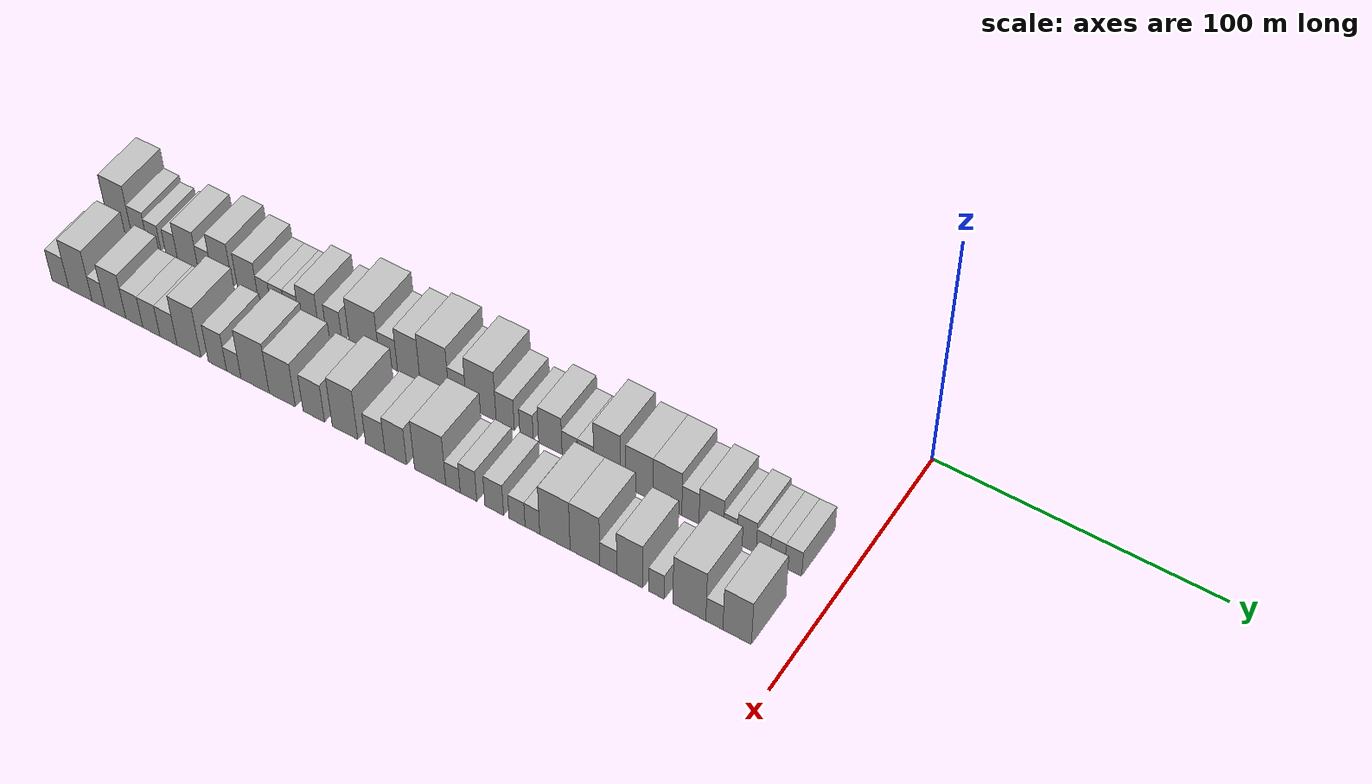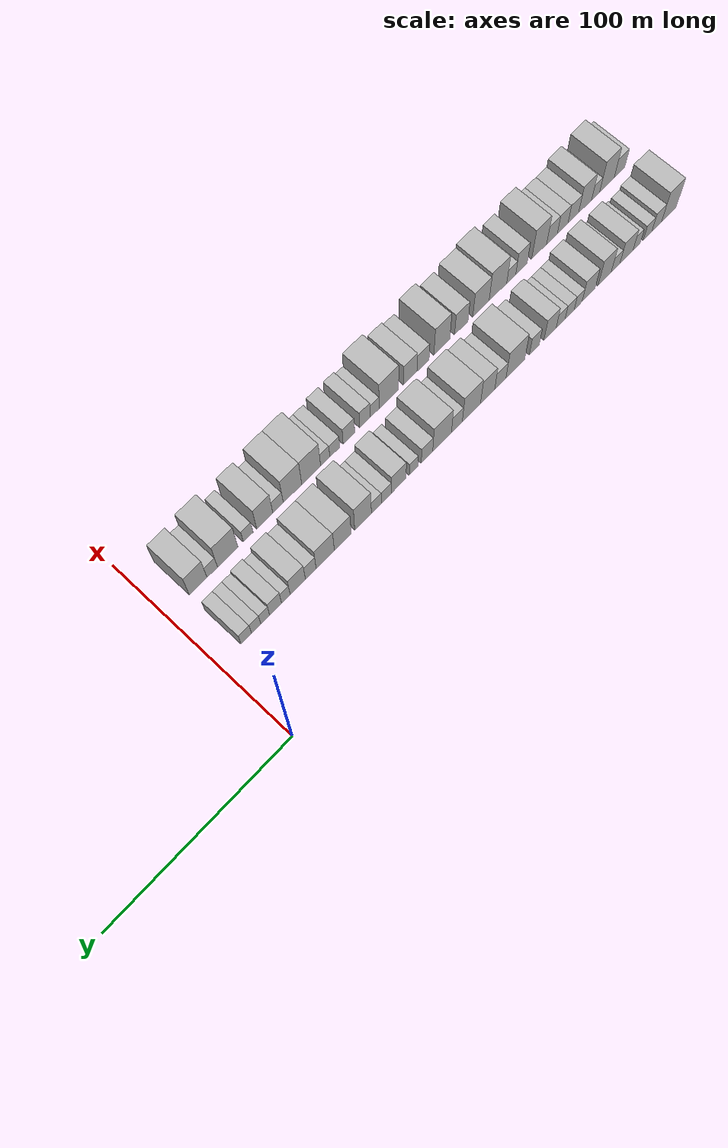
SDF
<sdf version="1.6">
 <world name="default">
  <model name="building_1">
   <static>1</static>
   <pose>50.0000 -273.0343 0 0.000000 0.000000 0.000000</pose>
   <link name="link">
    <pose>0 0 12.00 0 0 0</pose>
    <collision name="collision"><geometry><box><size>20.0000 9.9314 24.0000</size></box></geometry></collision>
    <visual name="visual">
     <cast_shadows>0</cast_shadows>
     <geometry><box><size>20.0000 9.9314 24.0000</size></box></geometry>
     <material>
      <script>
       <uri>model://HANNAS_wall/materials/scripts</uri>
       <uri>model://HANNAS_wall/materials/textures</uri>
       <name>vrc/HANNAS_wall</name>
      </script>
     </material>
    </visual>
   </link>
  </model>
  <model name="building_2">
   <static>1</static>
   <pose>50.0000 -264.8588 0 0.000000 0.000000 0.000000</pose>
   <link name="link">
    <pose>0 0 7.50 0 0 0</pose>
    <collision name="collision"><geometry><box><size>20.0000 6.4197 15.0000</size></box></geometry></collision>
    <visual name="visual">
     <cast_shadows>0</cast_shadows>
     <geometry><box><size>20.0000 6.4197 15.0000</size></box></geometry>
     <material>
      <script>
       <uri>model://HANNAS_wall/materials/scripts</uri>
       <uri>model://HANNAS_wall/materials/textures</uri>
       <name>vrc/HANNAS_wall</name>
      </script>
     </material>
    </visual>
   </link>
  </model>
  <model name="building_3">
   <static>1</static>
   <pose>50.0000 -258.8004 0 0.000000 0.000000 0.000000</pose>
   <link name="link">
    <pose>0 0 6.00 0 0 0</pose>
    <collision name="collision"><geometry><box><size>20.0000 5.6971 12.0000</size></box></geometry></collision>
    <visual name="visual">
     <cast_shadows>0</cast_shadows>
     <geometry><box><size>20.0000 5.6971 12.0000</size></box></geometry>
     <material>
      <script>
       <uri>model://HANNAS_wall/materials/scripts</uri>
       <uri>model://HANNAS_wall/materials/textures</uri>
       <name>vrc/HANNAS_wall</name>
      </script>
     </material>
    </visual>
   </link>
  </model>
  <model name="building_4">
   <static>1</static>
   <pose>50.0000 -251.4891 0 0.000000 0.000000 0.000000</pose>
   <link name="link">
    <pose>0 0 6.00 0 0 0</pose>
    <collision name="collision"><geometry><box><size>20.0000 4.9255 12.0000</size></box></geometry></collision>
    <visual name="visual">
     <cast_shadows>0</cast_shadows>
     <geometry><box><size>20.0000 4.9255 12.0000</size></box></geometry>
     <material>
      <script>
       <uri>model://HANNAS_wall/materials/scripts</uri>
       <uri>model://HANNAS_wall/materials/textures</uri>
       <name>vrc/HANNAS_wall</name>
      </script>
     </material>
    </visual>
   </link>
  </model>
  <model name="building_5">
   <static>1</static>
   <pose>50.0000 -244.7083 0 0.000000 0.000000 0.000000</pose>
   <link name="link">
    <pose>0 0 9.00 0 0 0</pose>
    <collision name="collision"><geometry><box><size>20.0000 8.6361 18.0000</size></box></geometry></collision>
    <visual name="visual">
     <cast_shadows>0</cast_shadows>
     <geometry><box><size>20.0000 8.6361 18.0000</size></box></geometry>
     <material>
      <script>
       <uri>model://HANNAS_wall/materials/scripts</uri>
       <uri>model://HANNAS_wall/materials/textures</uri>
       <name>vrc/HANNAS_wall</name>
      </script>
     </material>
    </visual>
   </link>
  </model>
  <model name="building_6">
   <static>1</static>
   <pose>50.0000 -237.5211 0 0.000000 0.000000 0.000000</pose>
   <link name="link">
    <pose>0 0 6.00 0 0 0</pose>
    <collision name="collision"><geometry><box><size>20.0000 5.7383 12.0000</size></box></geometry></collision>
    <visual name="visual">
     <cast_shadows>0</cast_shadows>
     <geometry><box><size>20.0000 5.7383 12.0000</size></box></geometry>
     <material>
      <script>
       <uri>model://HANNAS_wall/materials/scripts</uri>
       <uri>model://HANNAS_wall/materials/textures</uri>
       <name>vrc/HANNAS_wall</name>
      </script>
     </material>
    </visual>
   </link>
  </model>
  <model name="building_7">
   <static>1</static>
   <pose>50.0000 -230.3885 0 0.000000 0.000000 0.000000</pose>
   <link name="link">
    <pose>0 0 10.50 0 0 0</pose>
    <collision name="collision"><geometry><box><size>20.0000 8.5270 21.0000</size></box></geometry></collision>
    <visual name="visual">
     <cast_shadows>0</cast_shadows>
     <geometry><box><size>20.0000 8.5270 21.0000</size></box></geometry>
     <material>
      <script>
       <uri>model://HANNAS_wall/materials/scripts</uri>
       <uri>model://HANNAS_wall/materials/textures</uri>
       <name>vrc/HANNAS_wall</name>
      </script>
     </material>
    </visual>
   </link>
  </model>
  <model name="building_8">
   <static>1</static>
   <pose>50.0000 -219.9198 0 0.000000 0.000000 0.000000</pose>
   <link name="link">
    <pose>0 0 9.00 0 0 0</pose>
    <collision name="collision"><geometry><box><size>20.0000 8.4104 18.0000</size></box></geometry></collision>
    <visual name="visual">
     <cast_shadows>0</cast_shadows>
     <geometry><box><size>20.0000 8.4104 18.0000</size></box></geometry>
     <material>
      <script>
       <uri>model://HANNAS_wall/materials/scripts</uri>
       <uri>model://HANNAS_wall/materials/textures</uri>
       <name>vrc/HANNAS_wall</name>
      </script>
     </material>
    </visual>
   </link>
  </model>
  <model name="building_9">
   <static>1</static>
   <pose>50.0000 -213.1879 0 0.000000 0.000000 0.000000</pose>
   <link name="link">
    <pose>0 0 6.00 0 0 0</pose>
    <collision name="collision"><geometry><box><size>20.0000 5.0536 12.0000</size></box></geometry></collision>
    <visual name="visual">
     <cast_shadows>0</cast_shadows>
     <geometry><box><size>20.0000 5.0536 12.0000</size></box></geometry>
     <material>
      <script>
       <uri>model://HANNAS_wall/materials/scripts</uri>
       <uri>model://HANNAS_wall/materials/textures</uri>
       <name>vrc/HANNAS_wall</name>
      </script>
     </material>
    </visual>
   </link>
  </model>
  <model name="building_10">
   <static>1</static>
   <pose>50.0000 -207.7523 0 0.000000 0.000000 0.000000</pose>
   <link name="link">
    <pose>0 0 6.00 0 0 0</pose>
    <collision name="collision"><geometry><box><size>20.0000 5.8176 12.0000</size></box></geometry></collision>
    <visual name="visual">
     <cast_shadows>0</cast_shadows>
     <geometry><box><size>20.0000 5.8176 12.0000</size></box></geometry>
     <material>
      <script>
       <uri>model://HANNAS_wall/materials/scripts</uri>
       <uri>model://HANNAS_wall/materials/textures</uri>
       <name>vrc/HANNAS_wall</name>
      </script>
     </material>
    </visual>
   </link>
  </model>
  <model name="building_11">
   <static>1</static>
   <pose>50.0000 -201.9945 0 0.000000 0.000000 0.000000</pose>
   <link name="link">
    <pose>0 0 6.00 0 0 0</pose>
    <collision name="collision"><geometry><box><size>20.0000 5.6979 12.0000</size></box></geometry></collision>
    <visual name="visual">
     <cast_shadows>0</cast_shadows>
     <geometry><box><size>20.0000 5.6979 12.0000</size></box></geometry>
     <material>
      <script>
       <uri>model://HANNAS_wall/materials/scripts</uri>
       <uri>model://HANNAS_wall/materials/textures</uri>
       <name>vrc/HANNAS_wall</name>
      </script>
     </material>
    </visual>
   </link>
  </model>
  <model name="building_12">
   <static>1</static>
   <pose>50.0000 -195.2230 0 0.000000 0.000000 0.000000</pose>
   <link name="link">
    <pose>0 0 9.00 0 0 0</pose>
    <collision name="collision"><geometry><box><size>20.0000 7.8452 18.0000</size></box></geometry></collision>
    <visual name="visual">
     <cast_shadows>0</cast_shadows>
     <geometry><box><size>20.0000 7.8452 18.0000</size></box></geometry>
     <material>
      <script>
       <uri>model://HANNAS_wall/materials/scripts</uri>
       <uri>model://HANNAS_wall/materials/textures</uri>
       <name>vrc/HANNAS_wall</name>
      </script>
     </material>
    </visual>
   </link>
  </model>
  <model name="building_13">
   <static>1</static>
   <pose>50.0000 -185.1870 0 0.000000 0.000000 0.000000</pose>
   <link name="link">
    <pose>0 0 7.50 0 0 0</pose>
    <collision name="collision"><geometry><box><size>20.0000 6.2269 15.0000</size></box></geometry></collision>
    <visual name="visual">
     <cast_shadows>0</cast_shadows>
     <geometry><box><size>20.0000 6.2269 15.0000</size></box></geometry>
     <material>
      <script>
       <uri>model://HANNAS_wall/materials/scripts</uri>
       <uri>model://HANNAS_wall/materials/textures</uri>
       <name>vrc/HANNAS_wall</name>
      </script>
     </material>
    </visual>
   </link>
  </model>
  <model name="building_14">
   <static>1</static>
   <pose>50.0000 -173.2134 0 0.000000 0.000000 0.000000</pose>
   <link name="link">
    <pose>0 0 12.00 0 0 0</pose>
    <collision name="collision"><geometry><box><size>20.0000 11.7202 24.0000</size></box></geometry></collision>
    <visual name="visual">
     <cast_shadows>0</cast_shadows>
     <geometry><box><size>20.0000 11.7202 24.0000</size></box></geometry>
     <material>
      <script>
       <uri>model://HANNAS_wall/materials/scripts</uri>
       <uri>model://HANNAS_wall/materials/textures</uri>
       <name>vrc/HANNAS_wall</name>
      </script>
     </material>
    </visual>
   </link>
  </model>
  <model name="building_15">
   <static>1</static>
   <pose>50.0000 -163.8591 0 0.000000 0.000000 0.000000</pose>
   <link name="link">
    <pose>0 0 7.50 0 0 0</pose>
    <collision name="collision"><geometry><box><size>20.0000 6.9883 15.0000</size></box></geometry></collision>
    <visual name="visual">
     <cast_shadows>0</cast_shadows>
     <geometry><box><size>20.0000 6.9883 15.0000</size></box></geometry>
     <material>
      <script>
       <uri>model://HANNAS_wall/materials/scripts</uri>
       <uri>model://HANNAS_wall/materials/textures</uri>
       <name>vrc/HANNAS_wall</name>
      </script>
     </material>
    </visual>
   </link>
  </model>
  <model name="building_16">
   <static>1</static>
   <pose>50.0000 -155.9668 0 0.000000 0.000000 0.000000</pose>
   <link name="link">
    <pose>0 0 10.50 0 0 0</pose>
    <collision name="collision"><geometry><box><size>20.0000 8.7963 21.0000</size></box></geometry></collision>
    <visual name="visual">
     <cast_shadows>0</cast_shadows>
     <geometry><box><size>20.0000 8.7963 21.0000</size></box></geometry>
     <material>
      <script>
       <uri>model://HANNAS_wall/materials/scripts</uri>
       <uri>model://HANNAS_wall/materials/textures</uri>
       <name>vrc/HANNAS_wall</name>
      </script>
     </material>
    </visual>
   </link>
  </model>
  <model name="building_17">
   <static>1</static>
   <pose>50.0000 -145.9873 0 0.000000 0.000000 0.000000</pose>
   <link name="link">
    <pose>0 0 12.00 0 0 0</pose>
    <collision name="collision"><geometry><box><size>20.0000 11.1627 24.0000</size></box></geometry></collision>
    <visual name="visual">
     <cast_shadows>0</cast_shadows>
     <geometry><box><size>20.0000 11.1627 24.0000</size></box></geometry>
     <material>
      <script>
       <uri>model://HANNAS_wall/materials/scripts</uri>
       <uri>model://HANNAS_wall/materials/textures</uri>
       <name>vrc/HANNAS_wall</name>
      </script>
     </material>
    </visual>
   </link>
  </model>
  <model name="building_18">
   <static>1</static>
   <pose>50.0000 -137.1092 0 0.000000 0.000000 0.000000</pose>
   <link name="link">
    <pose>0 0 7.50 0 0 0</pose>
    <collision name="collision"><geometry><box><size>20.0000 6.5936 15.0000</size></box></geometry></collision>
    <visual name="visual">
     <cast_shadows>0</cast_shadows>
     <geometry><box><size>20.0000 6.5936 15.0000</size></box></geometry>
     <material>
      <script>
       <uri>model://HANNAS_wall/materials/scripts</uri>
       <uri>model://HANNAS_wall/materials/textures</uri>
       <name>vrc/HANNAS_wall</name>
      </script>
     </material>
    </visual>
   </link>
  </model>
  <model name="building_19">
   <static>1</static>
   <pose>50.0000 -128.1583 0 0.000000 0.000000 0.000000</pose>
   <link name="link">
    <pose>0 0 12.00 0 0 0</pose>
    <collision name="collision"><geometry><box><size>20.0000 11.3082 24.0000</size></box></geometry></collision>
    <visual name="visual">
     <cast_shadows>0</cast_shadows>
     <geometry><box><size>20.0000 11.3082 24.0000</size></box></geometry>
     <material>
      <script>
       <uri>model://HANNAS_wall/materials/scripts</uri>
       <uri>model://HANNAS_wall/materials/textures</uri>
       <name>vrc/HANNAS_wall</name>
      </script>
     </material>
    </visual>
   </link>
  </model>
  <model name="building_20">
   <static>1</static>
   <pose>50.0000 -119.0666 0 0.000000 0.000000 0.000000</pose>
   <link name="link">
    <pose>0 0 7.50 0 0 0</pose>
    <collision name="collision"><geometry><box><size>20.0000 6.8751 15.0000</size></box></geometry></collision>
    <visual name="visual">
     <cast_shadows>0</cast_shadows>
     <geometry><box><size>20.0000 6.8751 15.0000</size></box></geometry>
     <material>
      <script>
       <uri>model://HANNAS_wall/materials/scripts</uri>
       <uri>model://HANNAS_wall/materials/textures</uri>
       <name>vrc/HANNAS_wall</name>
      </script>
     </material>
    </visual>
   </link>
  </model>
  <model name="building_21">
   <static>1</static>
   <pose>50.0000 -111.0815 0 0.000000 0.000000 0.000000</pose>
   <link name="link">
    <pose>0 0 6.00 0 0 0</pose>
    <collision name="collision"><geometry><box><size>20.0000 5.0952 12.0000</size></box></geometry></collision>
    <visual name="visual">
     <cast_shadows>0</cast_shadows>
     <geometry><box><size>20.0000 5.0952 12.0000</size></box></geometry>
     <material>
      <script>
       <uri>model://HANNAS_wall/materials/scripts</uri>
       <uri>model://HANNAS_wall/materials/textures</uri>
       <name>vrc/HANNAS_wall</name>
      </script>
     </material>
    </visual>
   </link>
  </model>
  <model name="building_22">
   <static>1</static>
   <pose>50.0000 -102.1809 0 0.000000 0.000000 0.000000</pose>
   <link name="link">
    <pose>0 0 9.00 0 0 0</pose>
    <collision name="collision"><geometry><box><size>20.0000 8.7060 18.0000</size></box></geometry></collision>
    <visual name="visual">
     <cast_shadows>0</cast_shadows>
     <geometry><box><size>20.0000 8.7060 18.0000</size></box></geometry>
     <material>
      <script>
       <uri>model://HANNAS_wall/materials/scripts</uri>
       <uri>model://HANNAS_wall/materials/textures</uri>
       <name>vrc/HANNAS_wall</name>
      </script>
     </material>
    </visual>
   </link>
  </model>
  <model name="building_23">
   <static>1</static>
   <pose>50.0000 -94.8790 0 0.000000 0.000000 0.000000</pose>
   <link name="link">
    <pose>0 0 6.00 0 0 0</pose>
    <collision name="collision"><geometry><box><size>20.0000 5.8978 12.0000</size></box></geometry></collision>
    <visual name="visual">
     <cast_shadows>0</cast_shadows>
     <geometry><box><size>20.0000 5.8978 12.0000</size></box></geometry>
     <material>
      <script>
       <uri>model://HANNAS_wall/materials/scripts</uri>
       <uri>model://HANNAS_wall/materials/textures</uri>
       <name>vrc/HANNAS_wall</name>
      </script>
     </material>
    </visual>
   </link>
  </model>
  <model name="building_24">
   <static>1</static>
   <pose>50.0000 -89.0236 0 0.000000 0.000000 0.000000</pose>
   <link name="link">
    <pose>0 0 6.00 0 0 0</pose>
    <collision name="collision"><geometry><box><size>20.0000 5.8129 12.0000</size></box></geometry></collision>
    <visual name="visual">
     <cast_shadows>0</cast_shadows>
     <geometry><box><size>20.0000 5.8129 12.0000</size></box></geometry>
     <material>
      <script>
       <uri>model://HANNAS_wall/materials/scripts</uri>
       <uri>model://HANNAS_wall/materials/textures</uri>
       <name>vrc/HANNAS_wall</name>
      </script>
     </material>
    </visual>
   </link>
  </model>
  <model name="building_25">
   <static>1</static>
   <pose>50.0000 -81.2553 0 0.000000 0.000000 0.000000</pose>
   <link name="link">
    <pose>0 0 12.00 0 0 0</pose>
    <collision name="collision"><geometry><box><size>20.0000 9.7238 24.0000</size></box></geometry></collision>
    <visual name="visual">
     <cast_shadows>0</cast_shadows>
     <geometry><box><size>20.0000 9.7238 24.0000</size></box></geometry>
     <material>
      <script>
       <uri>model://HANNAS_wall/materials/scripts</uri>
       <uri>model://HANNAS_wall/materials/textures</uri>
       <name>vrc/HANNAS_wall</name>
      </script>
     </material>
    </visual>
   </link>
  </model>
  <model name="building_26">
   <static>1</static>
   <pose>50.0000 -69.5122 0 0.000000 0.000000 0.000000</pose>
   <link name="link">
    <pose>0 0 10.50 0 0 0</pose>
    <collision name="collision"><geometry><box><size>20.0000 9.7625 21.0000</size></box></geometry></collision>
    <visual name="visual">
     <cast_shadows>0</cast_shadows>
     <geometry><box><size>20.0000 9.7625 21.0000</size></box></geometry>
     <material>
      <script>
       <uri>model://HANNAS_wall/materials/scripts</uri>
       <uri>model://HANNAS_wall/materials/textures</uri>
       <name>vrc/HANNAS_wall</name>
      </script>
     </material>
    </visual>
   </link>
  </model>
  <model name="building_27">
   <static>1</static>
   <pose>50.0000 -59.4392 0 0.000000 0.000000 0.000000</pose>
   <link name="link">
    <pose>0 0 10.50 0 0 0</pose>
    <collision name="collision"><geometry><box><size>20.0000 10.3836 21.0000</size></box></geometry></collision>
    <visual name="visual">
     <cast_shadows>0</cast_shadows>
     <geometry><box><size>20.0000 10.3836 21.0000</size></box></geometry>
     <material>
      <script>
       <uri>model://HANNAS_wall/materials/scripts</uri>
       <uri>model://HANNAS_wall/materials/textures</uri>
       <name>vrc/HANNAS_wall</name>
      </script>
     </material>
    </visual>
   </link>
  </model>
  <model name="building_28">
   <static>1</static>
   <pose>50.0000 -51.1860 0 0.000000 0.000000 0.000000</pose>
   <link name="link">
    <pose>0 0 7.50 0 0 0</pose>
    <collision name="collision"><geometry><box><size>20.0000 6.1228 15.0000</size></box></geometry></collision>
    <visual name="visual">
     <cast_shadows>0</cast_shadows>
     <geometry><box><size>20.0000 6.1228 15.0000</size></box></geometry>
     <material>
      <script>
       <uri>model://HANNAS_wall/materials/scripts</uri>
       <uri>model://HANNAS_wall/materials/textures</uri>
       <name>vrc/HANNAS_wall</name>
      </script>
     </material>
    </visual>
   </link>
  </model>
  <model name="building_29">
   <static>1</static>
   <pose>50.0000 -43.8000 0 0.000000 0.000000 0.000000</pose>
   <link name="link">
    <pose>0 0 9.00 0 0 0</pose>
    <collision name="collision"><geometry><box><size>20.0000 8.6491 18.0000</size></box></geometry></collision>
    <visual name="visual">
     <cast_shadows>0</cast_shadows>
     <geometry><box><size>20.0000 8.6491 18.0000</size></box></geometry>
     <material>
      <script>
       <uri>model://HANNAS_wall/materials/scripts</uri>
       <uri>model://HANNAS_wall/materials/textures</uri>
       <name>vrc/HANNAS_wall</name>
      </script>
     </material>
    </visual>
   </link>
  </model>
  <model name="building_30">
   <static>1</static>
   <pose>50.0000 -37.0525 0 0.000000 0.000000 0.000000</pose>
   <link name="link">
    <pose>0 0 6.00 0 0 0</pose>
    <collision name="collision"><geometry><box><size>20.0000 4.8459 12.0000</size></box></geometry></collision>
    <visual name="visual">
     <cast_shadows>0</cast_shadows>
     <geometry><box><size>20.0000 4.8459 12.0000</size></box></geometry>
     <material>
      <script>
       <uri>model://HANNAS_wall/materials/scripts</uri>
       <uri>model://HANNAS_wall/materials/textures</uri>
       <name>vrc/HANNAS_wall</name>
      </script>
     </material>
    </visual>
   </link>
  </model>
  <model name="building_31">
   <static>1</static>
   <pose>50.0000 -31.2973 0 0.000000 0.000000 0.000000</pose>
   <link name="link">
    <pose>0 0 7.50 0 0 0</pose>
    <collision name="collision"><geometry><box><size>20.0000 6.6644 15.0000</size></box></geometry></collision>
    <visual name="visual">
     <cast_shadows>0</cast_shadows>
     <geometry><box><size>20.0000 6.6644 15.0000</size></box></geometry>
     <material>
      <script>
       <uri>model://HANNAS_wall/materials/scripts</uri>
       <uri>model://HANNAS_wall/materials/textures</uri>
       <name>vrc/HANNAS_wall</name>
      </script>
     </material>
    </visual>
   </link>
  </model>
  <model name="building_32">
   <static>1</static>
   <pose>50.0000 -25.5076 0 0.000000 0.000000 0.000000</pose>
   <link name="link">
    <pose>0 0 6.00 0 0 0</pose>
    <collision name="collision"><geometry><box><size>20.0000 4.9150 12.0000</size></box></geometry></collision>
    <visual name="visual">
     <cast_shadows>0</cast_shadows>
     <geometry><box><size>20.0000 4.9150 12.0000</size></box></geometry>
     <material>
      <script>
       <uri>model://HANNAS_wall/materials/scripts</uri>
       <uri>model://HANNAS_wall/materials/textures</uri>
       <name>vrc/HANNAS_wall</name>
      </script>
     </material>
    </visual>
   </link>
  </model>
  <model name="building_33">
   <static>1</static>
   <pose>50.0000 -20.5006 0 0.000000 0.000000 0.000000</pose>
   <link name="link">
    <pose>0 0 6.00 0 0 0</pose>
    <collision name="collision"><geometry><box><size>20.0000 5.0990 12.0000</size></box></geometry></collision>
    <visual name="visual">
     <cast_shadows>0</cast_shadows>
     <geometry><box><size>20.0000 5.0990 12.0000</size></box></geometry>
     <material>
      <script>
       <uri>model://HANNAS_wall/materials/scripts</uri>
       <uri>model://HANNAS_wall/materials/textures</uri>
       <name>vrc/HANNAS_wall</name>
      </script>
     </material>
    </visual>
   </link>
  </model>
  <model name="building_34">
   <static>1</static>
   <pose>50.0000 -15.0128 0 0.000000 0.000000 0.000000</pose>
   <link name="link">
    <pose>0 0 6.00 0 0 0</pose>
    <collision name="collision"><geometry><box><size>20.0000 5.8766 12.0000</size></box></geometry></collision>
    <visual name="visual">
     <cast_shadows>0</cast_shadows>
     <geometry><box><size>20.0000 5.8766 12.0000</size></box></geometry>
     <material>
      <script>
       <uri>model://HANNAS_wall/materials/scripts</uri>
       <uri>model://HANNAS_wall/materials/textures</uri>
       <name>vrc/HANNAS_wall</name>
      </script>
     </material>
    </visual>
   </link>
  </model>
  <model name="building_67">
   <static>1</static>
   <pose>79.0000 -274.4416 0 0.000000 0.000000 0.000000</pose>
   <link name="link">
    <pose>0 0 7.50 0 0 0</pose>
    <collision name="collision"><geometry><box><size>20.0000 7.1169 15.0000</size></box></geometry></collision>
    <visual name="visual">
     <cast_shadows>0</cast_shadows>
     <geometry><box><size>20.0000 7.1169 15.0000</size></box></geometry>
     <material>
      <script>
       <uri>model://HANNAS_wall/materials/scripts</uri>
       <uri>model://HANNAS_wall/materials/textures</uri>
       <name>vrc/HANNAS_wall</name>
      </script>
     </material>
    </visual>
   </link>
  </model>
  <model name="building_68">
   <static>1</static>
   <pose>79.0000 -266.0316 0 0.000000 0.000000 0.000000</pose>
   <link name="link">
    <pose>0 0 12.00 0 0 0</pose>
    <collision name="collision"><geometry><box><size>20.0000 9.7030 24.0000</size></box></geometry></collision>
    <visual name="visual">
     <cast_shadows>0</cast_shadows>
     <geometry><box><size>20.0000 9.7030 24.0000</size></box></geometry>
     <material>
      <script>
       <uri>model://HANNAS_wall/materials/scripts</uri>
       <uri>model://HANNAS_wall/materials/textures</uri>
       <name>vrc/HANNAS_wall</name>
      </script>
     </material>
    </visual>
   </link>
  </model>
  <model name="building_69">
   <static>1</static>
   <pose>79.0000 -258.5016 0 0.000000 0.000000 0.000000</pose>
   <link name="link">
    <pose>0 0 6.00 0 0 0</pose>
    <collision name="collision"><geometry><box><size>20.0000 5.3572 12.0000</size></box></geometry></collision>
    <visual name="visual">
     <cast_shadows>0</cast_shadows>
     <geometry><box><size>20.0000 5.3572 12.0000</size></box></geometry>
     <material>
      <script>
       <uri>model://HANNAS_wall/materials/scripts</uri>
       <uri>model://HANNAS_wall/materials/textures</uri>
       <name>vrc/HANNAS_wall</name>
      </script>
     </material>
    </visual>
   </link>
  </model>
  <model name="building_70">
   <static>1</static>
   <pose>79.0000 -251.5021 0 0.000000 0.000000 0.000000</pose>
   <link name="link">
    <pose>0 0 10.50 0 0 0</pose>
    <collision name="collision"><geometry><box><size>20.0000 8.6417 21.0000</size></box></geometry></collision>
    <visual name="visual">
     <cast_shadows>0</cast_shadows>
     <geometry><box><size>20.0000 8.6417 21.0000</size></box></geometry>
     <material>
      <script>
       <uri>model://HANNAS_wall/materials/scripts</uri>
       <uri>model://HANNAS_wall/materials/textures</uri>
       <name>vrc/HANNAS_wall</name>
      </script>
     </material>
    </visual>
   </link>
  </model>
  <model name="building_71">
   <static>1</static>
   <pose>79.0000 -243.6849 0 0.000000 0.000000 0.000000</pose>
   <link name="link">
    <pose>0 0 7.50 0 0 0</pose>
    <collision name="collision"><geometry><box><size>20.0000 6.9927 15.0000</size></box></geometry></collision>
    <visual name="visual">
     <cast_shadows>0</cast_shadows>
     <geometry><box><size>20.0000 6.9927 15.0000</size></box></geometry>
     <material>
      <script>
       <uri>model://HANNAS_wall/materials/scripts</uri>
       <uri>model://HANNAS_wall/materials/textures</uri>
       <name>vrc/HANNAS_wall</name>
      </script>
     </material>
    </visual>
   </link>
  </model>
  <model name="building_72">
   <static>1</static>
   <pose>79.0000 -236.7010 0 0.000000 0.000000 0.000000</pose>
   <link name="link">
    <pose>0 0 7.50 0 0 0</pose>
    <collision name="collision"><geometry><box><size>20.0000 6.9751 15.0000</size></box></geometry></collision>
    <visual name="visual">
     <cast_shadows>0</cast_shadows>
     <geometry><box><size>20.0000 6.9751 15.0000</size></box></geometry>
     <material>
      <script>
       <uri>model://HANNAS_wall/materials/scripts</uri>
       <uri>model://HANNAS_wall/materials/textures</uri>
       <name>vrc/HANNAS_wall</name>
      </script>
     </material>
    </visual>
   </link>
  </model>
  <model name="building_73">
   <static>1</static>
   <pose>79.0000 -229.7155 0 0.000000 0.000000 0.000000</pose>
   <link name="link">
    <pose>0 0 7.50 0 0 0</pose>
    <collision name="collision"><geometry><box><size>20.0000 6.9959 15.0000</size></box></geometry></collision>
    <visual name="visual">
     <cast_shadows>0</cast_shadows>
     <geometry><box><size>20.0000 6.9959 15.0000</size></box></geometry>
     <material>
      <script>
       <uri>model://HANNAS_wall/materials/scripts</uri>
       <uri>model://HANNAS_wall/materials/textures</uri>
       <name>vrc/HANNAS_wall</name>
      </script>
     </material>
    </visual>
   </link>
  </model>
  <model name="building_74">
   <static>1</static>
   <pose>79.0000 -221.3810 0 0.000000 0.000000 0.000000</pose>
   <link name="link">
    <pose>0 0 12.00 0 0 0</pose>
    <collision name="collision"><geometry><box><size>20.0000 9.6732 24.0000</size></box></geometry></collision>
    <visual name="visual">
     <cast_shadows>0</cast_shadows>
     <geometry><box><size>20.0000 9.6732 24.0000</size></box></geometry>
     <material>
      <script>
       <uri>model://HANNAS_wall/materials/scripts</uri>
       <uri>model://HANNAS_wall/materials/textures</uri>
       <name>vrc/HANNAS_wall</name>
      </script>
     </material>
    </visual>
   </link>
  </model>
  <model name="building_75">
   <static>1</static>
   <pose>79.0000 -209.8962 0 0.000000 0.000000 0.000000</pose>
   <link name="link">
    <pose>0 0 9.00 0 0 0</pose>
    <collision name="collision"><geometry><box><size>20.0000 7.2963 18.0000</size></box></geometry></collision>
    <visual name="visual">
     <cast_shadows>0</cast_shadows>
     <geometry><box><size>20.0000 7.2963 18.0000</size></box></geometry>
     <material>
      <script>
       <uri>model://HANNAS_wall/materials/scripts</uri>
       <uri>model://HANNAS_wall/materials/textures</uri>
       <name>vrc/HANNAS_wall</name>
      </script>
     </material>
    </visual>
   </link>
  </model>
  <model name="building_76">
   <static>1</static>
   <pose>79.0000 -203.3675 0 0.000000 0.000000 0.000000</pose>
   <link name="link">
    <pose>0 0 6.00 0 0 0</pose>
    <collision name="collision"><geometry><box><size>20.0000 5.7612 12.0000</size></box></geometry></collision>
    <visual name="visual">
     <cast_shadows>0</cast_shadows>
     <geometry><box><size>20.0000 5.7612 12.0000</size></box></geometry>
     <material>
      <script>
       <uri>model://HANNAS_wall/materials/scripts</uri>
       <uri>model://HANNAS_wall/materials/textures</uri>
       <name>vrc/HANNAS_wall</name>
      </script>
     </material>
    </visual>
   </link>
  </model>
  <model name="building_77">
   <static>1</static>
   <pose>79.0000 -194.9044 0 0.000000 0.000000 0.000000</pose>
   <link name="link">
    <pose>0 0 12.00 0 0 0</pose>
    <collision name="collision"><geometry><box><size>20.0000 11.1649 24.0000</size></box></geometry></collision>
    <visual name="visual">
     <cast_shadows>0</cast_shadows>
     <geometry><box><size>20.0000 11.1649 24.0000</size></box></geometry>
     <material>
      <script>
       <uri>model://HANNAS_wall/materials/scripts</uri>
       <uri>model://HANNAS_wall/materials/textures</uri>
       <name>vrc/HANNAS_wall</name>
      </script>
     </material>
    </visual>
   </link>
  </model>
  <model name="building_78">
   <static>1</static>
   <pose>79.0000 -184.1753 0 0.000000 0.000000 0.000000</pose>
   <link name="link">
    <pose>0 0 10.50 0 0 0</pose>
    <collision name="collision"><geometry><box><size>20.0000 10.2935 21.0000</size></box></geometry></collision>
    <visual name="visual">
     <cast_shadows>0</cast_shadows>
     <geometry><box><size>20.0000 10.2935 21.0000</size></box></geometry>
     <material>
      <script>
       <uri>model://HANNAS_wall/materials/scripts</uri>
       <uri>model://HANNAS_wall/materials/textures</uri>
       <name>vrc/HANNAS_wall</name>
      </script>
     </material>
    </visual>
   </link>
  </model>
  <model name="building_79">
   <static>1</static>
   <pose>79.0000 -171.8423 0 0.000000 0.000000 0.000000</pose>
   <link name="link">
    <pose>0 0 9.00 0 0 0</pose>
    <collision name="collision"><geometry><box><size>20.0000 8.3725 18.0000</size></box></geometry></collision>
    <visual name="visual">
     <cast_shadows>0</cast_shadows>
     <geometry><box><size>20.0000 8.3725 18.0000</size></box></geometry>
     <material>
      <script>
       <uri>model://HANNAS_wall/materials/scripts</uri>
       <uri>model://HANNAS_wall/materials/textures</uri>
       <name>vrc/HANNAS_wall</name>
      </script>
     </material>
    </visual>
   </link>
  </model>
  <model name="building_80">
   <static>1</static>
   <pose>79.0000 -159.7549 0 0.000000 0.000000 0.000000</pose>
   <link name="link">
    <pose>0 0 12.00 0 0 0</pose>
    <collision name="collision"><geometry><box><size>20.0000 9.8023 24.0000</size></box></geometry></collision>
    <visual name="visual">
     <cast_shadows>0</cast_shadows>
     <geometry><box><size>20.0000 9.8023 24.0000</size></box></geometry>
     <material>
      <script>
       <uri>model://HANNAS_wall/materials/scripts</uri>
       <uri>model://HANNAS_wall/materials/textures</uri>
       <name>vrc/HANNAS_wall</name>
      </script>
     </material>
    </visual>
   </link>
  </model>
  <model name="building_81">
   <static>1</static>
   <pose>79.0000 -148.1388 0 0.000000 0.000000 0.000000</pose>
   <link name="link">
    <pose>0 0 7.50 0 0 0</pose>
    <collision name="collision"><geometry><box><size>20.0000 7.4301 15.0000</size></box></geometry></collision>
    <visual name="visual">
     <cast_shadows>0</cast_shadows>
     <geometry><box><size>20.0000 7.4301 15.0000</size></box></geometry>
     <material>
      <script>
       <uri>model://HANNAS_wall/materials/scripts</uri>
       <uri>model://HANNAS_wall/materials/textures</uri>
       <name>vrc/HANNAS_wall</name>
      </script>
     </material>
    </visual>
   </link>
  </model>
  <model name="building_82">
   <static>1</static>
   <pose>79.0000 -140.3186 0 0.000000 0.000000 0.000000</pose>
   <link name="link">
    <pose>0 0 9.00 0 0 0</pose>
    <collision name="collision"><geometry><box><size>20.0000 8.2102 18.0000</size></box></geometry></collision>
    <visual name="visual">
     <cast_shadows>0</cast_shadows>
     <geometry><box><size>20.0000 8.2102 18.0000</size></box></geometry>
     <material>
      <script>
       <uri>model://HANNAS_wall/materials/scripts</uri>
       <uri>model://HANNAS_wall/materials/textures</uri>
       <name>vrc/HANNAS_wall</name>
      </script>
     </material>
    </visual>
   </link>
  </model>
  <model name="building_83">
   <static>1</static>
   <pose>79.0000 -127.3564 0 0.000000 0.000000 0.000000</pose>
   <link name="link">
    <pose>0 0 12.00 0 0 0</pose>
    <collision name="collision"><geometry><box><size>20.0000 11.7142 24.0000</size></box></geometry></collision>
    <visual name="visual">
     <cast_shadows>0</cast_shadows>
     <geometry><box><size>20.0000 11.7142 24.0000</size></box></geometry>
     <material>
      <script>
       <uri>model://HANNAS_wall/materials/scripts</uri>
       <uri>model://HANNAS_wall/materials/textures</uri>
       <name>vrc/HANNAS_wall</name>
      </script>
     </material>
    </visual>
   </link>
  </model>
  <model name="building_84">
   <static>1</static>
   <pose>79.0000 -118.8035 0 0.000000 0.000000 0.000000</pose>
   <link name="link">
    <pose>0 0 6.00 0 0 0</pose>
    <collision name="collision"><geometry><box><size>20.0000 5.3916 12.0000</size></box></geometry></collision>
    <visual name="visual">
     <cast_shadows>0</cast_shadows>
     <geometry><box><size>20.0000 5.3916 12.0000</size></box></geometry>
     <material>
      <script>
       <uri>model://HANNAS_wall/materials/scripts</uri>
       <uri>model://HANNAS_wall/materials/textures</uri>
       <name>vrc/HANNAS_wall</name>
      </script>
     </material>
    </visual>
   </link>
  </model>
  <model name="building_85">
   <static>1</static>
   <pose>79.0000 -113.0218 0 0.000000 0.000000 0.000000</pose>
   <link name="link">
    <pose>0 0 7.50 0 0 0</pose>
    <collision name="collision"><geometry><box><size>20.0000 6.1719 15.0000</size></box></geometry></collision>
    <visual name="visual">
     <cast_shadows>0</cast_shadows>
     <geometry><box><size>20.0000 6.1719 15.0000</size></box></geometry>
     <material>
      <script>
       <uri>model://HANNAS_wall/materials/scripts</uri>
       <uri>model://HANNAS_wall/materials/textures</uri>
       <name>vrc/HANNAS_wall</name>
      </script>
     </material>
    </visual>
   </link>
  </model>
  <model name="building_86">
   <static>1</static>
   <pose>79.0000 -103.4971 0 0.000000 0.000000 0.000000</pose>
   <link name="link">
    <pose>0 0 7.50 0 0 0</pose>
    <collision name="collision"><geometry><box><size>20.0000 6.8775 15.0000</size></box></geometry></collision>
    <visual name="visual">
     <cast_shadows>0</cast_shadows>
     <geometry><box><size>20.0000 6.8775 15.0000</size></box></geometry>
     <material>
      <script>
       <uri>model://HANNAS_wall/materials/scripts</uri>
       <uri>model://HANNAS_wall/materials/textures</uri>
       <name>vrc/HANNAS_wall</name>
      </script>
     </material>
    </visual>
   </link>
  </model>
  <model name="building_87">
   <static>1</static>
   <pose>79.0000 -95.1339 0 0.000000 0.000000 0.000000</pose>
   <link name="link">
    <pose>0 0 6.00 0 0 0</pose>
    <collision name="collision"><geometry><box><size>20.0000 5.8489 12.0000</size></box></geometry></collision>
    <visual name="visual">
     <cast_shadows>0</cast_shadows>
     <geometry><box><size>20.0000 5.8489 12.0000</size></box></geometry>
     <material>
      <script>
       <uri>model://HANNAS_wall/materials/scripts</uri>
       <uri>model://HANNAS_wall/materials/textures</uri>
       <name>vrc/HANNAS_wall</name>
      </script>
     </material>
    </visual>
   </link>
  </model>
  <model name="building_88">
   <static>1</static>
   <pose>79.0000 -89.5340 0 0.000000 0.000000 0.000000</pose>
   <link name="link">
    <pose>0 0 6.00 0 0 0</pose>
    <collision name="collision"><geometry><box><size>20.0000 5.3510 12.0000</size></box></geometry></collision>
    <visual name="visual">
     <cast_shadows>0</cast_shadows>
     <geometry><box><size>20.0000 5.3510 12.0000</size></box></geometry>
     <material>
      <script>
       <uri>model://HANNAS_wall/materials/scripts</uri>
       <uri>model://HANNAS_wall/materials/textures</uri>
       <name>vrc/HANNAS_wall</name>
      </script>
     </material>
    </visual>
   </link>
  </model>
  <model name="building_89">
   <static>1</static>
   <pose>79.0000 -81.3611 0 0.000000 0.000000 0.000000</pose>
   <link name="link">
    <pose>0 0 12.00 0 0 0</pose>
    <collision name="collision"><geometry><box><size>20.0000 10.9947 24.0000</size></box></geometry></collision>
    <visual name="visual">
     <cast_shadows>0</cast_shadows>
     <geometry><box><size>20.0000 10.9947 24.0000</size></box></geometry>
     <material>
      <script>
       <uri>model://HANNAS_wall/materials/scripts</uri>
       <uri>model://HANNAS_wall/materials/textures</uri>
       <name>vrc/HANNAS_wall</name>
      </script>
     </material>
    </visual>
   </link>
  </model>
  <model name="building_90">
   <static>1</static>
   <pose>79.0000 -70.5262 0 0.000000 0.000000 0.000000</pose>
   <link name="link">
    <pose>0 0 12.00 0 0 0</pose>
    <collision name="collision"><geometry><box><size>20.0000 10.6751 24.0000</size></box></geometry></collision>
    <visual name="visual">
     <cast_shadows>0</cast_shadows>
     <geometry><box><size>20.0000 10.6751 24.0000</size></box></geometry>
     <material>
      <script>
       <uri>model://HANNAS_wall/materials/scripts</uri>
       <uri>model://HANNAS_wall/materials/textures</uri>
       <name>vrc/HANNAS_wall</name>
      </script>
     </material>
    </visual>
   </link>
  </model>
  <model name="building_91">
   <static>1</static>
   <pose>79.0000 -62.1904 0 0.000000 0.000000 0.000000</pose>
   <link name="link">
    <pose>0 0 6.00 0 0 0</pose>
    <collision name="collision"><geometry><box><size>20.0000 5.9965 12.0000</size></box></geometry></collision>
    <visual name="visual">
     <cast_shadows>0</cast_shadows>
     <geometry><box><size>20.0000 5.9965 12.0000</size></box></geometry>
     <material>
      <script>
       <uri>model://HANNAS_wall/materials/scripts</uri>
       <uri>model://HANNAS_wall/materials/textures</uri>
       <name>vrc/HANNAS_wall</name>
      </script>
     </material>
    </visual>
   </link>
  </model>
  <model name="building_92">
   <static>1</static>
   <pose>79.0000 -54.5771 0 0.000000 0.000000 0.000000</pose>
   <link name="link">
    <pose>0 0 10.50 0 0 0</pose>
    <collision name="collision"><geometry><box><size>20.0000 9.2301 21.0000</size></box></geometry></collision>
    <visual name="visual">
     <cast_shadows>0</cast_shadows>
     <geometry><box><size>20.0000 9.2301 21.0000</size></box></geometry>
     <material>
      <script>
       <uri>model://HANNAS_wall/materials/scripts</uri>
       <uri>model://HANNAS_wall/materials/textures</uri>
       <name>vrc/HANNAS_wall</name>
      </script>
     </material>
    </visual>
   </link>
  </model>
  <model name="building_93">
   <static>1</static>
   <pose>79.0000 -45.1861 0 0.000000 0.000000 0.000000</pose>
   <link name="link">
    <pose>0 0 6.00 0 0 0</pose>
    <collision name="collision"><geometry><box><size>20.0000 5.5520 12.0000</size></box></geometry></collision>
    <visual name="visual">
     <cast_shadows>0</cast_shadows>
     <geometry><box><size>20.0000 5.5520 12.0000</size></box></geometry>
     <material>
      <script>
       <uri>model://HANNAS_wall/materials/scripts</uri>
       <uri>model://HANNAS_wall/materials/textures</uri>
       <name>vrc/HANNAS_wall</name>
      </script>
     </material>
    </visual>
   </link>
  </model>
  <model name="building_94">
   <static>1</static>
   <pose>79.0000 -33.6811 0 0.000000 0.000000 0.000000</pose>
   <link name="link">
    <pose>0 0 12.00 0 0 0</pose>
    <collision name="collision"><geometry><box><size>20.0000 11.4579 24.0000</size></box></geometry></collision>
    <visual name="visual">
     <cast_shadows>0</cast_shadows>
     <geometry><box><size>20.0000 11.4579 24.0000</size></box></geometry>
     <material>
      <script>
       <uri>model://HANNAS_wall/materials/scripts</uri>
       <uri>model://HANNAS_wall/materials/textures</uri>
       <name>vrc/HANNAS_wall</name>
      </script>
     </material>
    </visual>
   </link>
  </model>
  <model name="building_95">
   <static>1</static>
   <pose>79.0000 -25.0149 0 0.000000 0.000000 0.000000</pose>
   <link name="link">
    <pose>0 0 6.00 0 0 0</pose>
    <collision name="collision"><geometry><box><size>20.0000 5.8745 12.0000</size></box></geometry></collision>
    <visual name="visual">
     <cast_shadows>0</cast_shadows>
     <geometry><box><size>20.0000 5.8745 12.0000</size></box></geometry>
     <material>
      <script>
       <uri>model://HANNAS_wall/materials/scripts</uri>
       <uri>model://HANNAS_wall/materials/textures</uri>
       <name>vrc/HANNAS_wall</name>
      </script>
     </material>
    </visual>
   </link>
  </model>
  <model name="building_96">
   <static>1</static>
   <pose>79.0000 -17.1817 0 0.000000 0.000000 0.000000</pose>
   <link name="link">
    <pose>0 0 10.50 0 0 0</pose>
    <collision name="collision"><geometry><box><size>20.0000 9.7918 21.0000</size></box></geometry></collision>
    <visual name="visual">
     <cast_shadows>0</cast_shadows>
     <geometry><box><size>20.0000 9.7918 21.0000</size></box></geometry>
     <material>
      <script>
       <uri>model://HANNAS_wall/materials/scripts</uri>
       <uri>model://HANNAS_wall/materials/textures</uri>
       <name>vrc/HANNAS_wall</name>
      </script>
     </material>
    </visual>
   </link>
  </model>
 </world>
</sdf>
